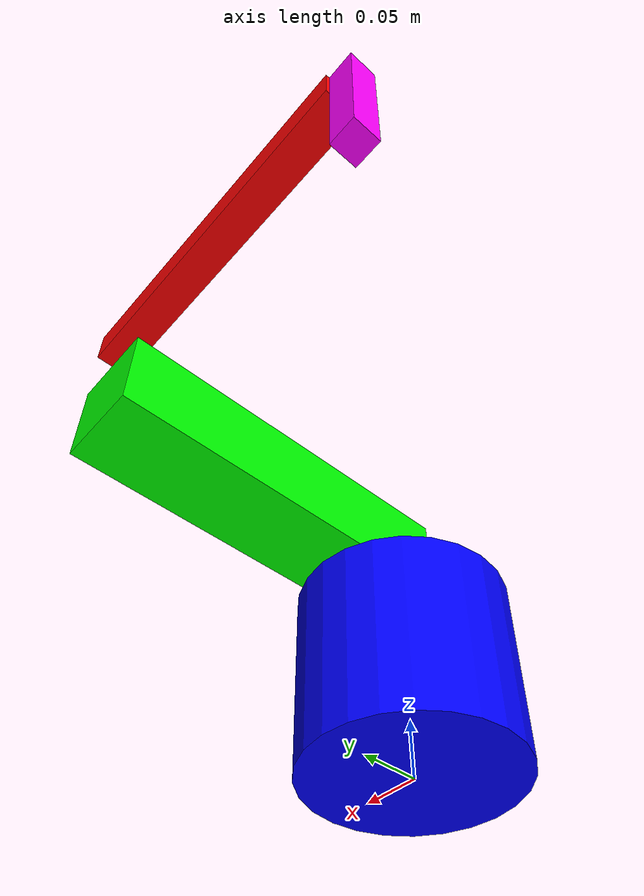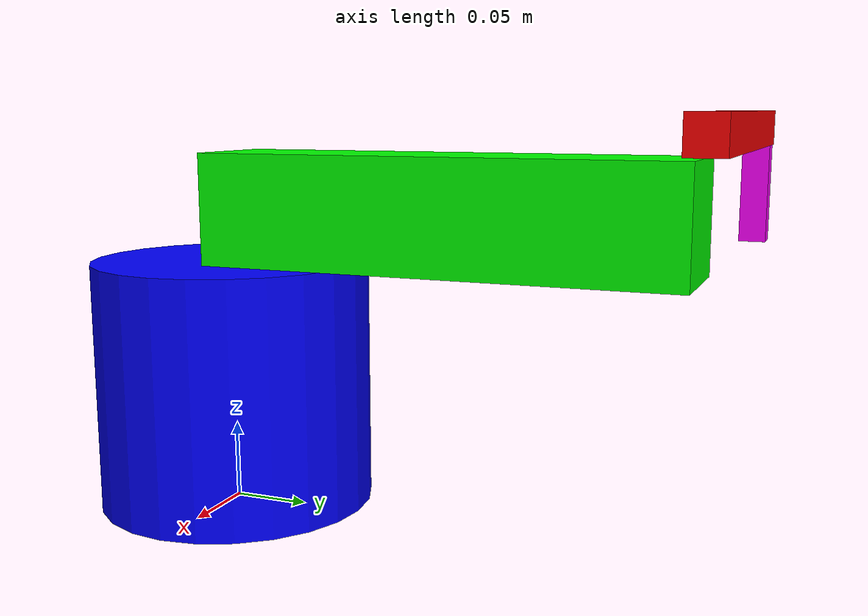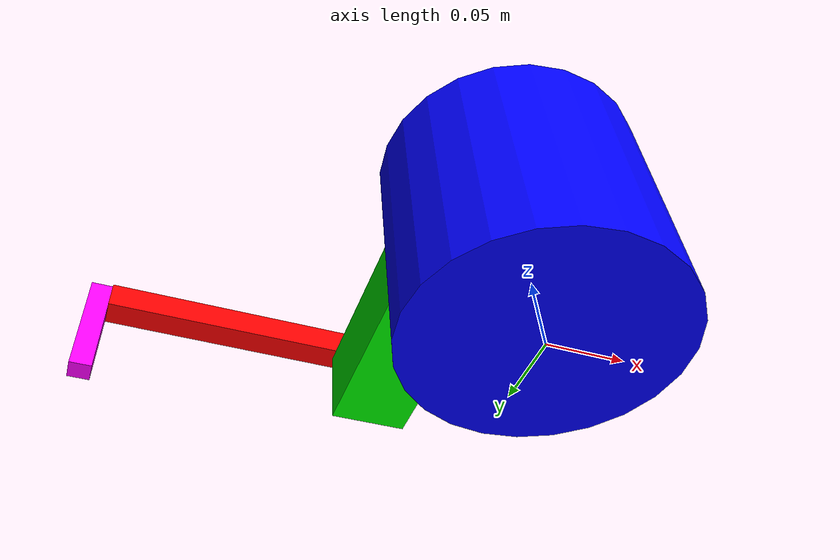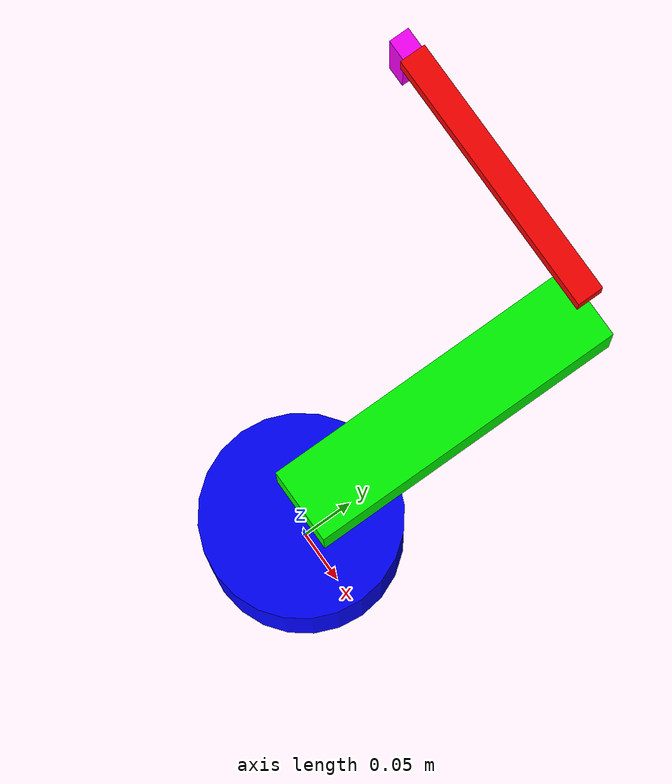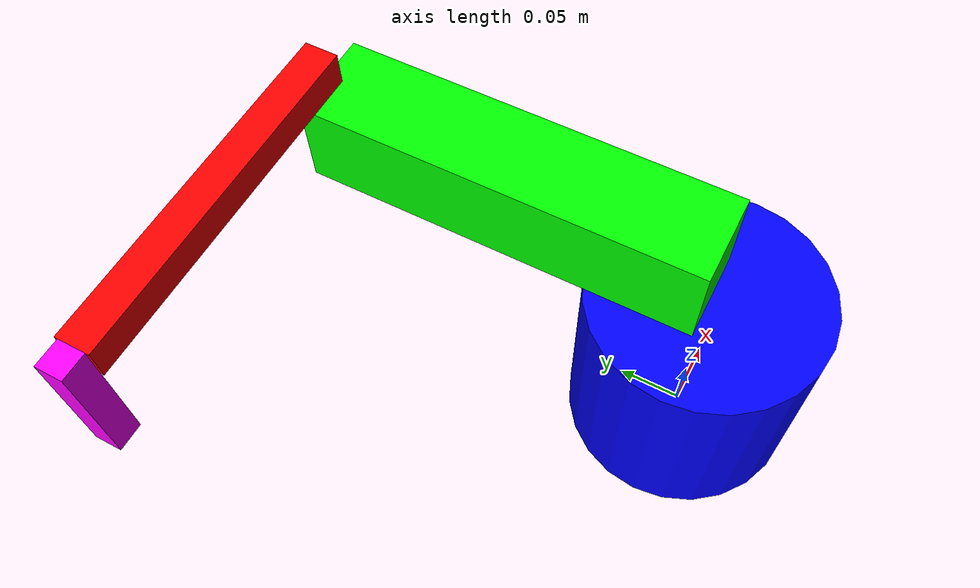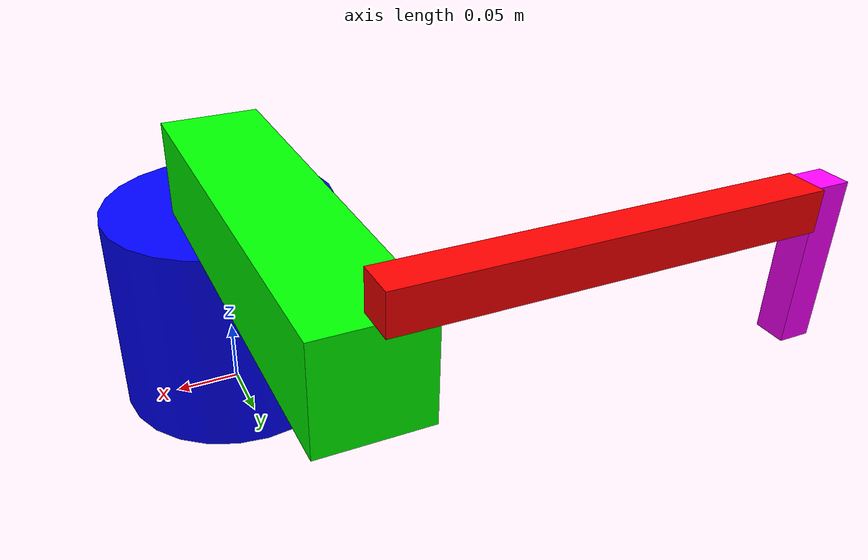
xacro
<?xml version="1.0"?>
<robot xmlns:xacro="http://www.ros.org/wiki/xacro" name="sledgehammer">

    <xacro:arg name="prefix" default=""/>

    <!-- chose hardware interface -->
    <xacro:arg name="use_mode_mock_hardware" default="false"/>
    <xacro:arg name="use_mode_gazebo" default="false"/>

    <!-- import robot -->
    <xacro:include filename="helper/base_robot.xacro"/>

    <!-- import hardware interface -->
    <xacro:if value="$(arg use_mode_mock_hardware)">
        <xacro:include filename="helper/ros2_control_hardware_interfaces/mock.ros2_control.xacro"/>
    </xacro:if>
    <xacro:unless value="$(arg use_mode_mock_hardware)">
        <xacro:if value="$(arg use_mode_gazebo)">
            <xacro:include filename="helper/ros2_control_hardware_interfaces/sim.ros2_control.xacro"/>
        </xacro:if>
        <xacro:unless value="$(arg use_mode_gazebo)">
            <xacro:include filename="helper/ros2_control_hardware_interfaces/real.ros2_control.xacro"/>
        </xacro:unless>
    </xacro:unless>

</robot>

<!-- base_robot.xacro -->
<robot xmlns:xacro="http://www.ros.org/wiki/xacro" xmlns="http://drake.mit.edu">

    <xacro:include filename="inertial_macros.xacro"/>
    <xacro:include filename="visual_macros.xacro"/>

    <xacro:property name="shoulder_radius" value="${.18/2}" />
    <xacro:property name="shoulder_height" value=".1615" />

    <xacro:property name="upperarm_length" value=".30381" />
    <xacro:property name="upperarm_height" value="0.070471" />
    <xacro:property name="upperarm_mass" value="0.4" />

    <xacro:property name="forearm_length" value=".259916" />
    <xacro:property name="forearm_height" value=".02545" />
    <xacro:property name="forearm_mass" value="0.3" />

    <xacro:property name="end_effector_radius" value="${.1/2}" />
    <xacro:property name="end_effector_length" value="0.1" />
    <xacro:property name="end_effector_height" value="0.02" />
    <xacro:property name="end_effector_mass" value=".1" />

    <link name="base_link"></link>

    <joint name="odrive_joint" type="fixed">
        <parent link="base_link"/>
        <child link="odrive_base"/>
    </joint>

    <link name="odrive_base">
        <xacro:cylinder_identical_collision mass="3" radius="${shoulder_radius}" height="${shoulder_height}">
            <material name="blue">
                <color rgba="0 0 1 1" />
            </material>
        </xacro:cylinder_identical_collision>
    </link>

    <joint name="shoulder" type="revolute">
        <parent link="odrive_base"/>
        <child link="upperarm"/>
        <origin xyz="0 0 ${shoulder_height}"/>
        <axis xyz="0 0 1" />
        <limit upper="${pi/2}" lower="-${pi/2}" effort=".1" velocity=".5"/>
    </joint>

    <link name="upperarm">
        <xacro:square_prism_identical_collision mass="${upperarm_mass}" length="${upperarm_length}" height="${upperarm_height}">
            <material name="green">
                <color rgba="0 1 0 1" />
            </material>
        </xacro:square_prism_identical_collision>
        <xacro:square_prism_inertial mass="${upperarm_mass}" length="${upperarm_length}" height="${upperarm_height}"/>
    </link>

    <joint name="elbow" type="revolute">
        <parent link="upperarm"/>
        <child link="forearm"/>
        <!-- start at pi/2 so not at a singularity -->
        <origin xyz="0 ${upperarm_length} ${upperarm_height}" rpy="0 0 ${pi/2}"/>
        <axis xyz="0 0 1" />
        <limit upper="${pi/2}" lower="-${pi/2}" effort=".1" velocity=".5"/>
    </joint>

    <link name="forearm">
        <xacro:square_prism_identical_collision mass="${forearm_mass}" length="${forearm_length}" height="${forearm_height}">
            <material name="red">
                <color rgba="1 0 0 1" />
            </material>
        </xacro:square_prism_identical_collision>
        <xacro:square_prism_inertial mass="${forearm_mass}" length="${forearm_length}" height="${forearm_height}"/>
    </link>

    <joint name="wrist" type="fixed">
        <parent link="forearm"/>
        <child link="end_effector"/>
        <origin xyz="0 ${forearm_length} ${forearm_height}" rpy="-${pi/2} 0 0"/>
        <axis xyz="0 0 1" />
        <limit upper="${pi/2}" lower="-${pi/2}" effort=".1" velocity=".5"/>
    </joint>

    <link name="end_effector">
        <xacro:square_prism_identical_collision mass="${end_effector_mass}" length="${end_effector_length}" height="${end_effector_height}">
            <material name="orange">
                <color rgba="1 0 1 1" />
            </material>
        </xacro:square_prism_identical_collision>
        <xacro:square_prism_inertial mass="${end_effector_mass}" length="${end_effector_length}" height="${end_effector_height}"/>
    </link>

    <!-- Drake 'MultibodyPlant does not currently support non-default mechanical reductions.' -->

</robot>

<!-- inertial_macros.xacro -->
<robot xmlns:xacro="http://www.ros.org/wiki/xacro" >

    <!-- https://en.wikipedia.org/wiki/List_of_moments_of_inertia -->
    <xacro:macro name="square_prism_inertial" params="mass length height">
        <inertial>
            <mass value="${mass}"/>
            <!-- In the Articulated Robot video, his xyz here is x, 0, z. Why? -->
            <origin xyz="${height/2} ${length/2} ${height/2}" />
            <inertia ixx="${1/12 * mass * (length*length + height*height)}" ixy="0.0" ixz="0.0"
                    iyy="${1/12 * mass * (2 * height*height)}" iyz="0.0"
                    izz="${1/12 * mass * (length*length + height*height)}" />
        </inertial>
    </xacro:macro>

</robot>

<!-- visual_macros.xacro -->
<robot xmlns:xacro="http://www.ros.org/wiki/xacro" >

    <xacro:macro name="square_prism_identical_collision" params="mass length height *material">
        <visual>
            <geometry>
                <box size="${height} ${length} ${height}"/>
            </geometry>
            <origin xyz="0 ${length/2} ${height/2}" />
            <xacro:insert_block name="material"/>
        </visual>
        <collision>
            <geometry>
                <box size="${height} ${length} ${height}"/>
            </geometry>
            <origin xyz="0 ${length/2} ${height/2}" />
        </collision>
    </xacro:macro>

    <xacro:macro name="cylinder_identical_collision" params="mass radius height *material">
        <visual>
            <geometry>
                <cylinder length="${height}" radius="${radius}"/>
            </geometry>
            <xacro:insert_block name="material"/>
            <origin xyz="0 0 ${height/2}"/>
        </visual>
        <collision>
            <geometry>
                <cylinder length="${height}" radius="${radius}"/>
            </geometry>
            <origin xyz="0 0 ${height/2}"/>
        </collision>
    </xacro:macro>

</robot>
